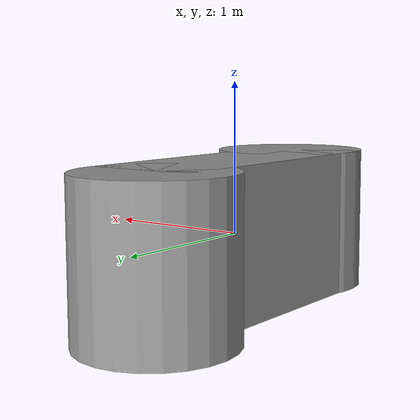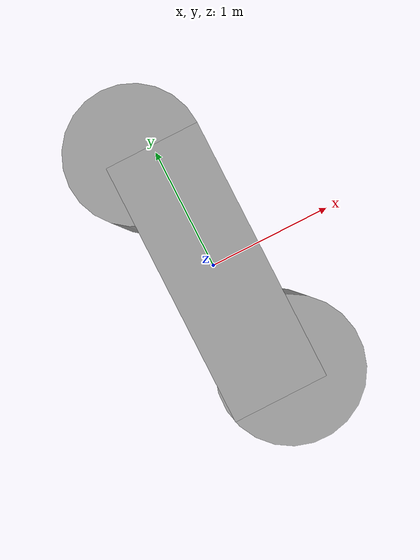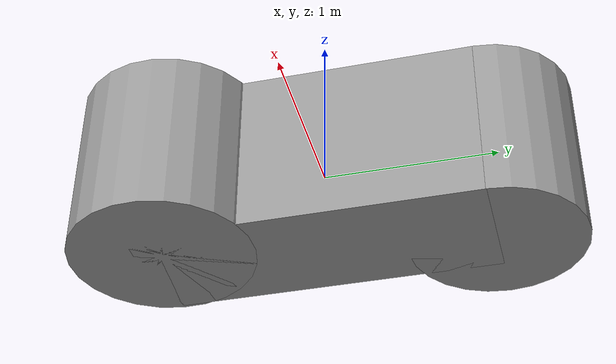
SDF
<?xml version='1.0'?>
<sdf version='1.7'>
  <model name='demo_model'>
    <link name='link_0'>
      <inertial>
        <mass>1.41219</mass>
        <inertia>
          <ixx>0.579585</ixx>
          <ixy>0</ixy>
          <ixz>0</ixz>
          <iyy>0.177478</iyy>
          <iyz>0</iyz>
          <izz>0.521697</izz>
        </inertia>
        <pose>0 0 0 0 -0 0</pose>
      </inertial>
      <pose>-0.003219 -0.04931 0 0 -0 0</pose>
      <visual name='visual'>
        <pose>0 0 0 0 -0 0</pose>
        <geometry>
          <box>
            <size>0.712814 1.98115 1</size>
          </box>
        </geometry>
        <material>
          <lighting>1</lighting>
          <script>
            <uri>file://media/materials/scripts/gazebo.material</uri>
            <name>Gazebo/Grey</name>
          </script>
          <shader type='pixel'/>
          <emissive>0 0 0 1</emissive>
        </material>
        <transparency>0</transparency>
        <cast_shadows>1</cast_shadows>
      </visual>
      <collision name='collision'>
        <laser_retro>0</laser_retro>
        <max_contacts>10</max_contacts>
        <pose>0 0 0 0 -0 0</pose>
        <geometry>
          <box>
            <size>0.712814 1.98115 1</size>
          </box>
        </geometry>
        <surface>
          <friction>
            <ode>
              <mu>1</mu>
              <mu2>1</mu2>
              <fdir1>0 0 0</fdir1>
              <slip1>0</slip1>
              <slip2>0</slip2>
            </ode>
            <torsional>
              <coefficient>1</coefficient>
              <patch_radius>0</patch_radius>
              <surface_radius>0</surface_radius>
              <use_patch_radius>1</use_patch_radius>
              <ode>
                <slip>0</slip>
              </ode>
            </torsional>
          </friction>
          <bounce>
            <restitution_coefficient>0</restitution_coefficient>
            <threshold>1e+06</threshold>
          </bounce>
          <contact>
            <collide_without_contact>0</collide_without_contact>
            <collide_without_contact_bitmask>1</collide_without_contact_bitmask>
            <collide_bitmask>1</collide_bitmask>
            <ode>
              <soft_cfm>0</soft_cfm>
              <soft_erp>0.2</soft_erp>
              <kp>1e+13</kp>
              <kd>1</kd>
              <max_vel>0.01</max_vel>
              <min_depth>0</min_depth>
            </ode>
            <bullet>
              <split_impulse>1</split_impulse>
              <split_impulse_penetration_threshold>-0.01</split_impulse_penetration_threshold>
              <soft_cfm>0</soft_cfm>
              <soft_erp>0.2</soft_erp>
              <kp>1e+13</kp>
              <kd>1</kd>
            </bullet>
          </contact>
        </surface>
      </collision>
    </link>
    <link name='link_1'>
      <inertial>
        <mass>1.12437</mass>
        <inertia>
          <ixx>0.172706</ixx>
          <ixy>0</ixy>
          <ixz>0</ixz>
          <iyy>0.172706</iyy>
          <iyz>0</iyz>
          <izz>0.158018</izz>
        </inertia>
        <pose>0 0 0 0 -0 0</pose>
      </inertial>
      <pose>0.149403 -0.891814 0 0 0 -0.687223</pose>
      <visual name='visual'>
        <pose>0 0 0 0 -0 0</pose>
        <geometry>
          <cylinder>
            <radius>0.530167</radius>
            <length>1</length>
          </cylinder>
        </geometry>
        <material>
          <lighting>1</lighting>
          <script>
            <uri>file://media/materials/scripts/gazebo.material</uri>
            <name>Gazebo/Grey</name>
          </script>
          <shader type='pixel'/>
        </material>
        <transparency>0</transparency>
        <cast_shadows>1</cast_shadows>
      </visual>
      <collision name='collision'>
        <laser_retro>0</laser_retro>
        <max_contacts>10</max_contacts>
        <pose>0 0 0 0 -0 0</pose>
        <geometry>
          <cylinder>
            <radius>0.530167</radius>
            <length>1</length>
          </cylinder>
        </geometry>
        <surface>
          <friction>
            <ode>
              <mu>1</mu>
              <mu2>1</mu2>
              <fdir1>0 0 0</fdir1>
              <slip1>0</slip1>
              <slip2>0</slip2>
            </ode>
            <torsional>
              <coefficient>1</coefficient>
              <patch_radius>0</patch_radius>
              <surface_radius>0</surface_radius>
              <use_patch_radius>1</use_patch_radius>
              <ode>
                <slip>0</slip>
              </ode>
            </torsional>
          </friction>
          <bounce>
            <restitution_coefficient>0</restitution_coefficient>
            <threshold>1e+06</threshold>
          </bounce>
          <contact>
            <collide_without_contact>0</collide_without_contact>
            <collide_without_contact_bitmask>1</collide_without_contact_bitmask>
            <collide_bitmask>1</collide_bitmask>
            <ode>
              <soft_cfm>0</soft_cfm>
              <soft_erp>0.2</soft_erp>
              <kp>1e+13</kp>
              <kd>1</kd>
              <max_vel>0.01</max_vel>
              <min_depth>0</min_depth>
            </ode>
            <bullet>
              <split_impulse>1</split_impulse>
              <split_impulse_penetration_threshold>-0.01</split_impulse_penetration_threshold>
              <soft_cfm>0</soft_cfm>
              <soft_erp>0.2</soft_erp>
              <kp>1e+13</kp>
              <kd>1</kd>
            </bullet>
          </contact>
        </surface>
      </collision>
    </link>
    <link name='link_2'>
      <inertial>
        <mass>1</mass>
        <inertia>
          <ixx>0.145833</ixx>
          <ixy>0</ixy>
          <ixz>0</ixz>
          <iyy>0.145833</iyy>
          <iyz>0</iyz>
          <izz>0.125</izz>
        </inertia>
      </inertial>
      <pose>-0.146184 0.941124 0 0 -0 0</pose>
      <visual name='visual'>
        <pose>0 0 0 0 -0 0</pose>
        <geometry>
          <cylinder>
            <radius>0.5</radius>
            <length>1</length>
          </cylinder>
        </geometry>
        <material>
          <lighting>1</lighting>
          <script>
            <uri>file://media/materials/scripts/gazebo.material</uri>
            <name>Gazebo/Grey</name>
          </script>
          <shader type='pixel'/>
        </material>
        <transparency>0</transparency>
        <cast_shadows>1</cast_shadows>
      </visual>
      <collision name='collision'>
        <laser_retro>0</laser_retro>
        <max_contacts>10</max_contacts>
        <pose>0 0 0 0 -0 0</pose>
        <geometry>
          <cylinder>
            <radius>0.5</radius>
            <length>1</length>
          </cylinder>
        </geometry>
        <surface>
          <friction>
            <ode>
              <mu>1</mu>
              <mu2>1</mu2>
              <fdir1>0 0 0</fdir1>
              <slip1>0</slip1>
              <slip2>0</slip2>
            </ode>
            <torsional>
              <coefficient>1</coefficient>
              <patch_radius>0</patch_radius>
              <surface_radius>0</surface_radius>
              <use_patch_radius>1</use_patch_radius>
              <ode>
                <slip>0</slip>
              </ode>
            </torsional>
          </friction>
          <bounce>
            <restitution_coefficient>0</restitution_coefficient>
            <threshold>1e+06</threshold>
          </bounce>
          <contact>
            <collide_without_contact>0</collide_without_contact>
            <collide_without_contact_bitmask>1</collide_without_contact_bitmask>
            <collide_bitmask>1</collide_bitmask>
            <ode>
              <soft_cfm>0</soft_cfm>
              <soft_erp>0.2</soft_erp>
              <kp>1e+13</kp>
              <kd>1</kd>
              <max_vel>0.01</max_vel>
              <min_depth>0</min_depth>
            </ode>
            <bullet>
              <split_impulse>1</split_impulse>
              <split_impulse_penetration_threshold>-0.01</split_impulse_penetration_threshold>
              <soft_cfm>0</soft_cfm>
              <soft_erp>0.2</soft_erp>
              <kp>1e+13</kp>
              <kd>1</kd>
            </bullet>
          </contact>
        </surface>
      </collision>
    </link>
    <static>0</static>
    <allow_auto_disable>1</allow_auto_disable>
  </model>
</sdf>
